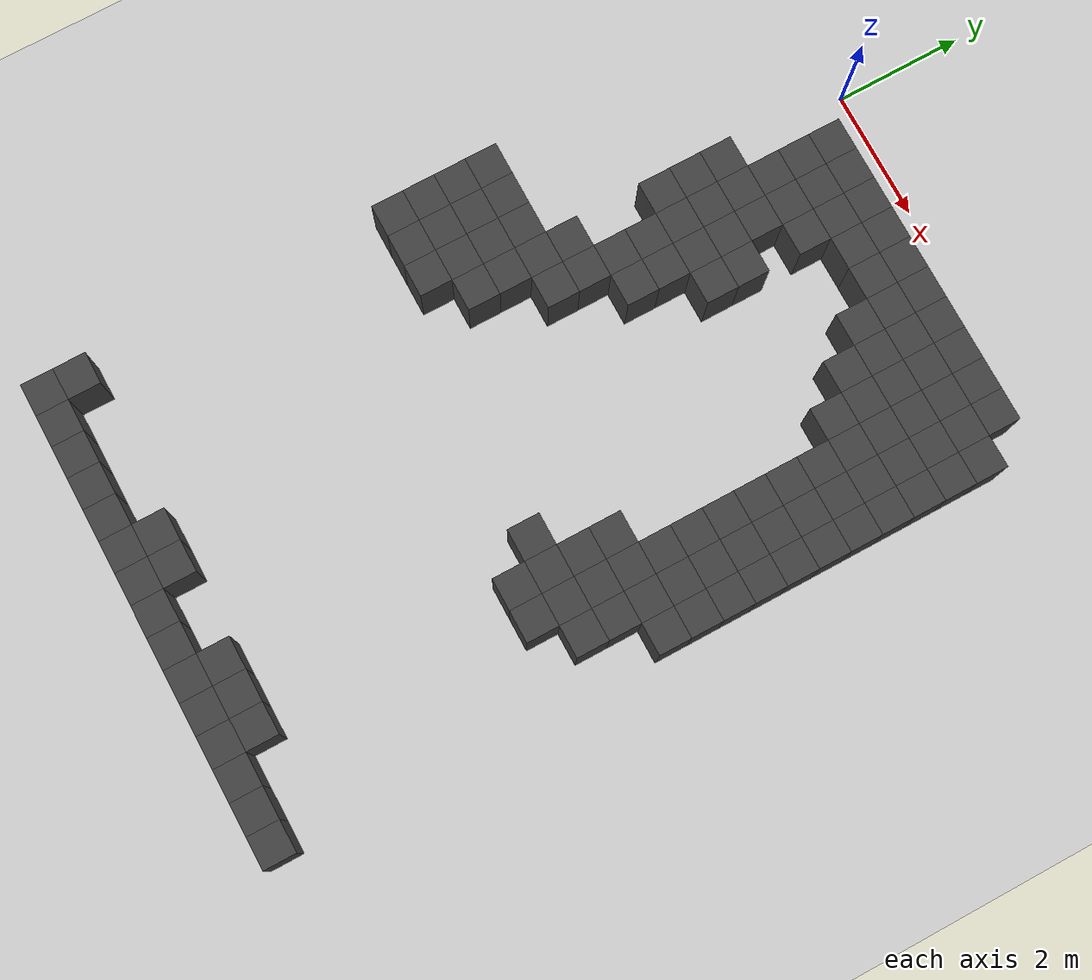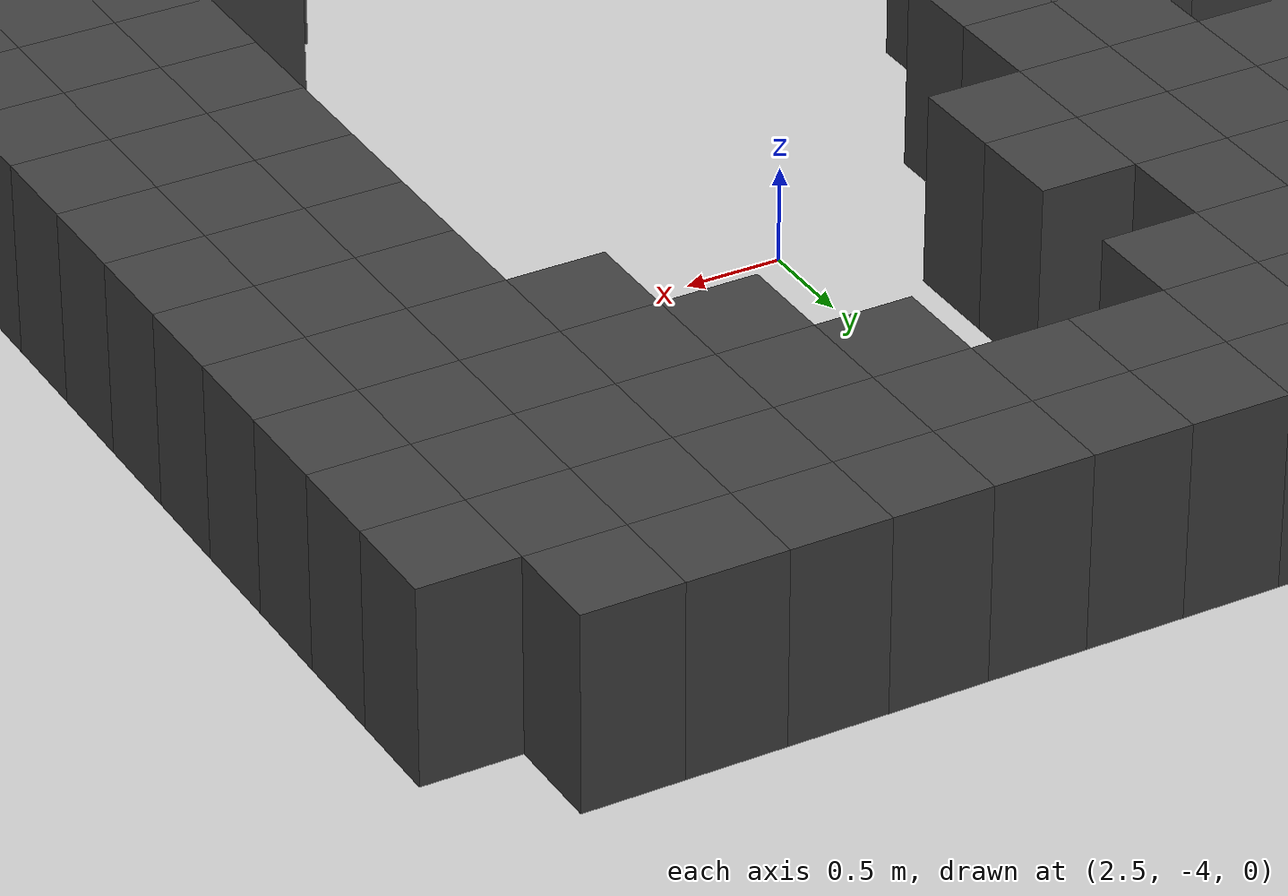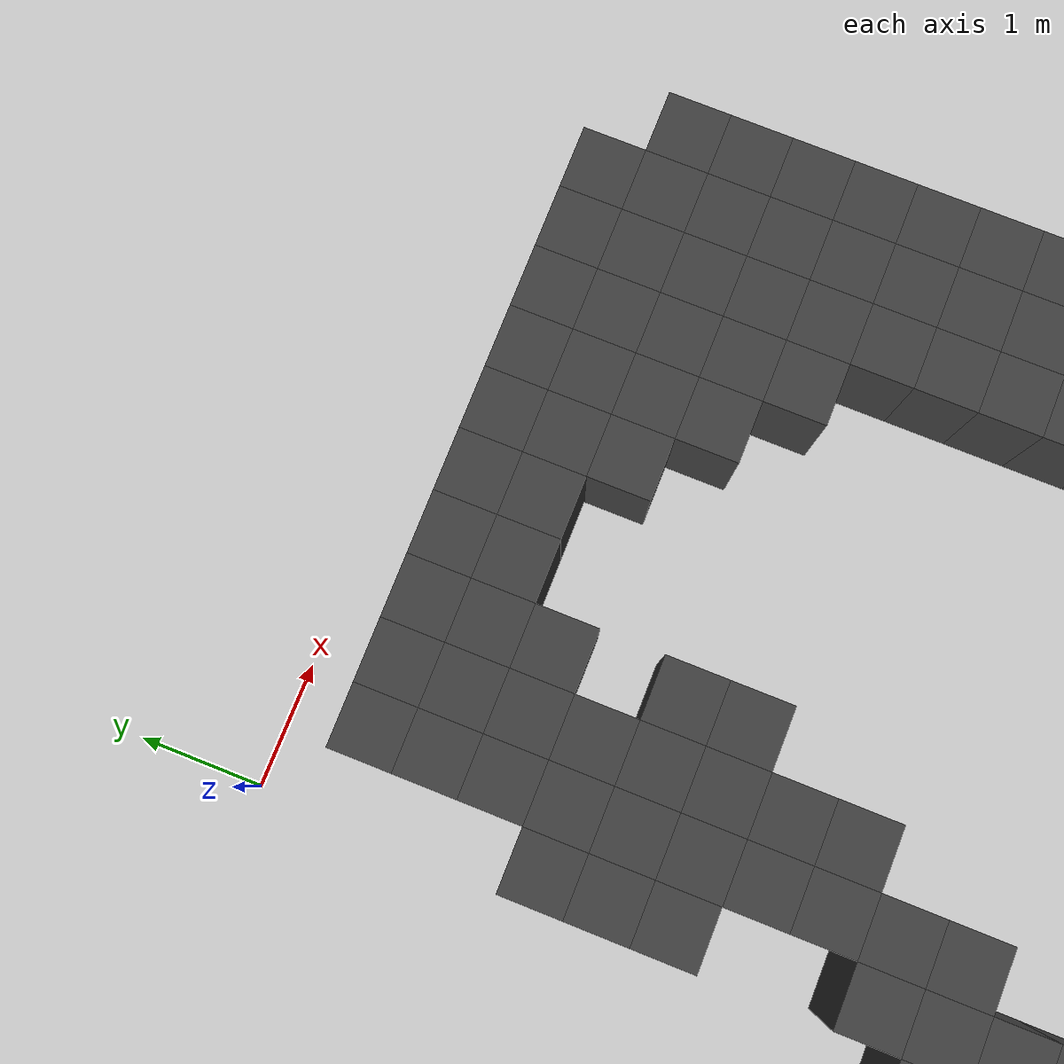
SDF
<sdf version="1.7">
 <world name="map_7972">
  <model name="ground_plane">
   <static>true</static>
   <link name="link">
    <collision name="collision">
     <geometry><plane><normal>0 0 1</normal><size>200 200</size></plane></geometry>
    </collision>
    <visual name="visual">
     <geometry><plane><normal>0 0 1</normal><size>200 200</size></plane></geometry>
     <material><ambient>0.8 0.8 0.8 1</ambient><diffuse>0.8 0.8 0.8 1</diffuse></material>
    </visual>
   </link>
  </model>
  <model name="maze_environment">
   <static>true</static>
   <link name="wall_431">
    <pose>0.750 -0.750 0.500 0 0 0</pose>
    <collision name="col"><geometry><box><size>0.5 0.5 1.0</size></box></geometry></collision>
    <visual name="vis">
     <geometry><box><size>0.5 0.5 1.0</size></box></geometry>
     <material><ambient>0.15 0.15 0.15 1</ambient><diffuse>0.25 0.25 0.25 1</diffuse></material>
    </visual>
   </link>
   <link name="wall_432">
    <pose>1.250 -0.750 0.500 0 0 0</pose>
    <collision name="col"><geometry><box><size>0.5 0.5 1.0</size></box></geometry></collision>
    <visual name="vis">
     <geometry><box><size>0.5 0.5 1.0</size></box></geometry>
     <material><ambient>0.15 0.15 0.15 1</ambient><diffuse>0.25 0.25 0.25 1</diffuse></material>
    </visual>
   </link>
   <link name="wall_433">
    <pose>1.750 -0.750 0.500 0 0 0</pose>
    <collision name="col"><geometry><box><size>0.5 0.5 1.0</size></box></geometry></collision>
    <visual name="vis">
     <geometry><box><size>0.5 0.5 1.0</size></box></geometry>
     <material><ambient>0.15 0.15 0.15 1</ambient><diffuse>0.25 0.25 0.25 1</diffuse></material>
    </visual>
   </link>
   <link name="wall_434">
    <pose>2.250 -0.750 0.500 0 0 0</pose>
    <collision name="col"><geometry><box><size>0.5 0.5 1.0</size></box></geometry></collision>
    <visual name="vis">
     <geometry><box><size>0.5 0.5 1.0</size></box></geometry>
     <material><ambient>0.15 0.15 0.15 1</ambient><diffuse>0.25 0.25 0.25 1</diffuse></material>
    </visual>
   </link>
   <link name="wall_435">
    <pose>2.750 -0.750 0.500 0 0 0</pose>
    <collision name="col"><geometry><box><size>0.5 0.5 1.0</size></box></geometry></collision>
    <visual name="vis">
     <geometry><box><size>0.5 0.5 1.0</size></box></geometry>
     <material><ambient>0.15 0.15 0.15 1</ambient><diffuse>0.25 0.25 0.25 1</diffuse></material>
    </visual>
   </link>
   <link name="wall_436">
    <pose>3.250 -0.750 0.500 0 0 0</pose>
    <collision name="col"><geometry><box><size>0.5 0.5 1.0</size></box></geometry></collision>
    <visual name="vis">
     <geometry><box><size>0.5 0.5 1.0</size></box></geometry>
     <material><ambient>0.15 0.15 0.15 1</ambient><diffuse>0.25 0.25 0.25 1</diffuse></material>
    </visual>
   </link>
   <link name="wall_437">
    <pose>3.750 -0.750 0.500 0 0 0</pose>
    <collision name="col"><geometry><box><size>0.5 0.5 1.0</size></box></geometry></collision>
    <visual name="vis">
     <geometry><box><size>0.5 0.5 1.0</size></box></geometry>
     <material><ambient>0.15 0.15 0.15 1</ambient><diffuse>0.25 0.25 0.25 1</diffuse></material>
    </visual>
   </link>
   <link name="wall_438">
    <pose>4.250 -0.750 0.500 0 0 0</pose>
    <collision name="col"><geometry><box><size>0.5 0.5 1.0</size></box></geometry></collision>
    <visual name="vis">
     <geometry><box><size>0.5 0.5 1.0</size></box></geometry>
     <material><ambient>0.15 0.15 0.15 1</ambient><diffuse>0.25 0.25 0.25 1</diffuse></material>
    </visual>
   </link>
   <link name="wall_439">
    <pose>4.750 -0.750 0.500 0 0 0</pose>
    <collision name="col"><geometry><box><size>0.5 0.5 1.0</size></box></geometry></collision>
    <visual name="vis">
     <geometry><box><size>0.5 0.5 1.0</size></box></geometry>
     <material><ambient>0.15 0.15 0.15 1</ambient><diffuse>0.25 0.25 0.25 1</diffuse></material>
    </visual>
   </link>
   <link name="wall_440">
    <pose>5.250 -0.750 0.500 0 0 0</pose>
    <collision name="col"><geometry><box><size>0.5 0.5 1.0</size></box></geometry></collision>
    <visual name="vis">
     <geometry><box><size>0.5 0.5 1.0</size></box></geometry>
     <material><ambient>0.15 0.15 0.15 1</ambient><diffuse>0.25 0.25 0.25 1</diffuse></material>
    </visual>
   </link>
   <link name="wall_461">
    <pose>0.750 -1.250 0.500 0 0 0</pose>
    <collision name="col"><geometry><box><size>0.5 0.5 1.0</size></box></geometry></collision>
    <visual name="vis">
     <geometry><box><size>0.5 0.5 1.0</size></box></geometry>
     <material><ambient>0.15 0.15 0.15 1</ambient><diffuse>0.25 0.25 0.25 1</diffuse></material>
    </visual>
   </link>
   <link name="wall_462">
    <pose>1.250 -1.250 0.500 0 0 0</pose>
    <collision name="col"><geometry><box><size>0.5 0.5 1.0</size></box></geometry></collision>
    <visual name="vis">
     <geometry><box><size>0.5 0.5 1.0</size></box></geometry>
     <material><ambient>0.15 0.15 0.15 1</ambient><diffuse>0.25 0.25 0.25 1</diffuse></material>
    </visual>
   </link>
   <link name="wall_463">
    <pose>1.750 -1.250 0.500 0 0 0</pose>
    <collision name="col"><geometry><box><size>0.5 0.5 1.0</size></box></geometry></collision>
    <visual name="vis">
     <geometry><box><size>0.5 0.5 1.0</size></box></geometry>
     <material><ambient>0.15 0.15 0.15 1</ambient><diffuse>0.25 0.25 0.25 1</diffuse></material>
    </visual>
   </link>
   <link name="wall_464">
    <pose>2.250 -1.250 0.500 0 0 0</pose>
    <collision name="col"><geometry><box><size>0.5 0.5 1.0</size></box></geometry></collision>
    <visual name="vis">
     <geometry><box><size>0.5 0.5 1.0</size></box></geometry>
     <material><ambient>0.15 0.15 0.15 1</ambient><diffuse>0.25 0.25 0.25 1</diffuse></material>
    </visual>
   </link>
   <link name="wall_465">
    <pose>2.750 -1.250 0.500 0 0 0</pose>
    <collision name="col"><geometry><box><size>0.5 0.5 1.0</size></box></geometry></collision>
    <visual name="vis">
     <geometry><box><size>0.5 0.5 1.0</size></box></geometry>
     <material><ambient>0.15 0.15 0.15 1</ambient><diffuse>0.25 0.25 0.25 1</diffuse></material>
    </visual>
   </link>
   <link name="wall_466">
    <pose>3.250 -1.250 0.500 0 0 0</pose>
    <collision name="col"><geometry><box><size>0.5 0.5 1.0</size></box></geometry></collision>
    <visual name="vis">
     <geometry><box><size>0.5 0.5 1.0</size></box></geometry>
     <material><ambient>0.15 0.15 0.15 1</ambient><diffuse>0.25 0.25 0.25 1</diffuse></material>
    </visual>
   </link>
   <link name="wall_467">
    <pose>3.750 -1.250 0.500 0 0 0</pose>
    <collision name="col"><geometry><box><size>0.5 0.5 1.0</size></box></geometry></collision>
    <visual name="vis">
     <geometry><box><size>0.5 0.5 1.0</size></box></geometry>
     <material><ambient>0.15 0.15 0.15 1</ambient><diffuse>0.25 0.25 0.25 1</diffuse></material>
    </visual>
   </link>
   <link name="wall_468">
    <pose>4.250 -1.250 0.500 0 0 0</pose>
    <collision name="col"><geometry><box><size>0.5 0.5 1.0</size></box></geometry></collision>
    <visual name="vis">
     <geometry><box><size>0.5 0.5 1.0</size></box></geometry>
     <material><ambient>0.15 0.15 0.15 1</ambient><diffuse>0.25 0.25 0.25 1</diffuse></material>
    </visual>
   </link>
   <link name="wall_469">
    <pose>4.750 -1.250 0.500 0 0 0</pose>
    <collision name="col"><geometry><box><size>0.5 0.5 1.0</size></box></geometry></collision>
    <visual name="vis">
     <geometry><box><size>0.5 0.5 1.0</size></box></geometry>
     <material><ambient>0.15 0.15 0.15 1</ambient><diffuse>0.25 0.25 0.25 1</diffuse></material>
    </visual>
   </link>
   <link name="wall_470">
    <pose>5.250 -1.250 0.500 0 0 0</pose>
    <collision name="col"><geometry><box><size>0.5 0.5 1.0</size></box></geometry></collision>
    <visual name="vis">
     <geometry><box><size>0.5 0.5 1.0</size></box></geometry>
     <material><ambient>0.15 0.15 0.15 1</ambient><diffuse>0.25 0.25 0.25 1</diffuse></material>
    </visual>
   </link>
   <link name="wall_471">
    <pose>5.750 -1.250 0.500 0 0 0</pose>
    <collision name="col"><geometry><box><size>0.5 0.5 1.0</size></box></geometry></collision>
    <visual name="vis">
     <geometry><box><size>0.5 0.5 1.0</size></box></geometry>
     <material><ambient>0.15 0.15 0.15 1</ambient><diffuse>0.25 0.25 0.25 1</diffuse></material>
    </visual>
   </link>
   <link name="wall_492">
    <pose>0.750 -1.750 0.500 0 0 0</pose>
    <collision name="col"><geometry><box><size>0.5 0.5 1.0</size></box></geometry></collision>
    <visual name="vis">
     <geometry><box><size>0.5 0.5 1.0</size></box></geometry>
     <material><ambient>0.15 0.15 0.15 1</ambient><diffuse>0.25 0.25 0.25 1</diffuse></material>
    </visual>
   </link>
   <link name="wall_493">
    <pose>1.250 -1.750 0.500 0 0 0</pose>
    <collision name="col"><geometry><box><size>0.5 0.5 1.0</size></box></geometry></collision>
    <visual name="vis">
     <geometry><box><size>0.5 0.5 1.0</size></box></geometry>
     <material><ambient>0.15 0.15 0.15 1</ambient><diffuse>0.25 0.25 0.25 1</diffuse></material>
    </visual>
   </link>
   <link name="wall_494">
    <pose>1.750 -1.750 0.500 0 0 0</pose>
    <collision name="col"><geometry><box><size>0.5 0.5 1.0</size></box></geometry></collision>
    <visual name="vis">
     <geometry><box><size>0.5 0.5 1.0</size></box></geometry>
     <material><ambient>0.15 0.15 0.15 1</ambient><diffuse>0.25 0.25 0.25 1</diffuse></material>
    </visual>
   </link>
   <link name="wall_495">
    <pose>3.250 -1.750 0.500 0 0 0</pose>
    <collision name="col"><geometry><box><size>0.5 0.5 1.0</size></box></geometry></collision>
    <visual name="vis">
     <geometry><box><size>0.5 0.5 1.0</size></box></geometry>
     <material><ambient>0.15 0.15 0.15 1</ambient><diffuse>0.25 0.25 0.25 1</diffuse></material>
    </visual>
   </link>
   <link name="wall_496">
    <pose>3.750 -1.750 0.500 0 0 0</pose>
    <collision name="col"><geometry><box><size>0.5 0.5 1.0</size></box></geometry></collision>
    <visual name="vis">
     <geometry><box><size>0.5 0.5 1.0</size></box></geometry>
     <material><ambient>0.15 0.15 0.15 1</ambient><diffuse>0.25 0.25 0.25 1</diffuse></material>
    </visual>
   </link>
   <link name="wall_497">
    <pose>4.250 -1.750 0.500 0 0 0</pose>
    <collision name="col"><geometry><box><size>0.5 0.5 1.0</size></box></geometry></collision>
    <visual name="vis">
     <geometry><box><size>0.5 0.5 1.0</size></box></geometry>
     <material><ambient>0.15 0.15 0.15 1</ambient><diffuse>0.25 0.25 0.25 1</diffuse></material>
    </visual>
   </link>
   <link name="wall_498">
    <pose>4.750 -1.750 0.500 0 0 0</pose>
    <collision name="col"><geometry><box><size>0.5 0.5 1.0</size></box></geometry></collision>
    <visual name="vis">
     <geometry><box><size>0.5 0.5 1.0</size></box></geometry>
     <material><ambient>0.15 0.15 0.15 1</ambient><diffuse>0.25 0.25 0.25 1</diffuse></material>
    </visual>
   </link>
   <link name="wall_499">
    <pose>5.250 -1.750 0.500 0 0 0</pose>
    <collision name="col"><geometry><box><size>0.5 0.5 1.0</size></box></geometry></collision>
    <visual name="vis">
     <geometry><box><size>0.5 0.5 1.0</size></box></geometry>
     <material><ambient>0.15 0.15 0.15 1</ambient><diffuse>0.25 0.25 0.25 1</diffuse></material>
    </visual>
   </link>
   <link name="wall_500">
    <pose>5.750 -1.750 0.500 0 0 0</pose>
    <collision name="col"><geometry><box><size>0.5 0.5 1.0</size></box></geometry></collision>
    <visual name="vis">
     <geometry><box><size>0.5 0.5 1.0</size></box></geometry>
     <material><ambient>0.15 0.15 0.15 1</ambient><diffuse>0.25 0.25 0.25 1</diffuse></material>
    </visual>
   </link>
   <link name="wall_522">
    <pose>0.250 -2.250 0.500 0 0 0</pose>
    <collision name="col"><geometry><box><size>0.5 0.5 1.0</size></box></geometry></collision>
    <visual name="vis">
     <geometry><box><size>0.5 0.5 1.0</size></box></geometry>
     <material><ambient>0.15 0.15 0.15 1</ambient><diffuse>0.25 0.25 0.25 1</diffuse></material>
    </visual>
   </link>
   <link name="wall_523">
    <pose>0.750 -2.250 0.500 0 0 0</pose>
    <collision name="col"><geometry><box><size>0.5 0.5 1.0</size></box></geometry></collision>
    <visual name="vis">
     <geometry><box><size>0.5 0.5 1.0</size></box></geometry>
     <material><ambient>0.15 0.15 0.15 1</ambient><diffuse>0.25 0.25 0.25 1</diffuse></material>
    </visual>
   </link>
   <link name="wall_524">
    <pose>1.250 -2.250 0.500 0 0 0</pose>
    <collision name="col"><geometry><box><size>0.5 0.5 1.0</size></box></geometry></collision>
    <visual name="vis">
     <geometry><box><size>0.5 0.5 1.0</size></box></geometry>
     <material><ambient>0.15 0.15 0.15 1</ambient><diffuse>0.25 0.25 0.25 1</diffuse></material>
    </visual>
   </link>
   <link name="wall_525">
    <pose>3.750 -2.250 0.500 0 0 0</pose>
    <collision name="col"><geometry><box><size>0.5 0.5 1.0</size></box></geometry></collision>
    <visual name="vis">
     <geometry><box><size>0.5 0.5 1.0</size></box></geometry>
     <material><ambient>0.15 0.15 0.15 1</ambient><diffuse>0.25 0.25 0.25 1</diffuse></material>
    </visual>
   </link>
   <link name="wall_526">
    <pose>4.250 -2.250 0.500 0 0 0</pose>
    <collision name="col"><geometry><box><size>0.5 0.5 1.0</size></box></geometry></collision>
    <visual name="vis">
     <geometry><box><size>0.5 0.5 1.0</size></box></geometry>
     <material><ambient>0.15 0.15 0.15 1</ambient><diffuse>0.25 0.25 0.25 1</diffuse></material>
    </visual>
   </link>
   <link name="wall_527">
    <pose>4.750 -2.250 0.500 0 0 0</pose>
    <collision name="col"><geometry><box><size>0.5 0.5 1.0</size></box></geometry></collision>
    <visual name="vis">
     <geometry><box><size>0.5 0.5 1.0</size></box></geometry>
     <material><ambient>0.15 0.15 0.15 1</ambient><diffuse>0.25 0.25 0.25 1</diffuse></material>
    </visual>
   </link>
   <link name="wall_528">
    <pose>5.250 -2.250 0.500 0 0 0</pose>
    <collision name="col"><geometry><box><size>0.5 0.5 1.0</size></box></geometry></collision>
    <visual name="vis">
     <geometry><box><size>0.5 0.5 1.0</size></box></geometry>
     <material><ambient>0.15 0.15 0.15 1</ambient><diffuse>0.25 0.25 0.25 1</diffuse></material>
    </visual>
   </link>
   <link name="wall_529">
    <pose>5.750 -2.250 0.500 0 0 0</pose>
    <collision name="col"><geometry><box><size>0.5 0.5 1.0</size></box></geometry></collision>
    <visual name="vis">
     <geometry><box><size>0.5 0.5 1.0</size></box></geometry>
     <material><ambient>0.15 0.15 0.15 1</ambient><diffuse>0.25 0.25 0.25 1</diffuse></material>
    </visual>
   </link>
   <link name="wall_552">
    <pose>0.250 -2.750 0.500 0 0 0</pose>
    <collision name="col"><geometry><box><size>0.5 0.5 1.0</size></box></geometry></collision>
    <visual name="vis">
     <geometry><box><size>0.5 0.5 1.0</size></box></geometry>
     <material><ambient>0.15 0.15 0.15 1</ambient><diffuse>0.25 0.25 0.25 1</diffuse></material>
    </visual>
   </link>
   <link name="wall_553">
    <pose>0.750 -2.750 0.500 0 0 0</pose>
    <collision name="col"><geometry><box><size>0.5 0.5 1.0</size></box></geometry></collision>
    <visual name="vis">
     <geometry><box><size>0.5 0.5 1.0</size></box></geometry>
     <material><ambient>0.15 0.15 0.15 1</ambient><diffuse>0.25 0.25 0.25 1</diffuse></material>
    </visual>
   </link>
   <link name="wall_554">
    <pose>1.250 -2.750 0.500 0 0 0</pose>
    <collision name="col"><geometry><box><size>0.5 0.5 1.0</size></box></geometry></collision>
    <visual name="vis">
     <geometry><box><size>0.5 0.5 1.0</size></box></geometry>
     <material><ambient>0.15 0.15 0.15 1</ambient><diffuse>0.25 0.25 0.25 1</diffuse></material>
    </visual>
   </link>
   <link name="wall_555">
    <pose>1.750 -2.750 0.500 0 0 0</pose>
    <collision name="col"><geometry><box><size>0.5 0.5 1.0</size></box></geometry></collision>
    <visual name="vis">
     <geometry><box><size>0.5 0.5 1.0</size></box></geometry>
     <material><ambient>0.15 0.15 0.15 1</ambient><diffuse>0.25 0.25 0.25 1</diffuse></material>
    </visual>
   </link>
   <link name="wall_556">
    <pose>4.250 -2.750 0.500 0 0 0</pose>
    <collision name="col"><geometry><box><size>0.5 0.5 1.0</size></box></geometry></collision>
    <visual name="vis">
     <geometry><box><size>0.5 0.5 1.0</size></box></geometry>
     <material><ambient>0.15 0.15 0.15 1</ambient><diffuse>0.25 0.25 0.25 1</diffuse></material>
    </visual>
   </link>
   <link name="wall_557">
    <pose>4.750 -2.750 0.500 0 0 0</pose>
    <collision name="col"><geometry><box><size>0.5 0.5 1.0</size></box></geometry></collision>
    <visual name="vis">
     <geometry><box><size>0.5 0.5 1.0</size></box></geometry>
     <material><ambient>0.15 0.15 0.15 1</ambient><diffuse>0.25 0.25 0.25 1</diffuse></material>
    </visual>
   </link>
   <link name="wall_558">
    <pose>5.250 -2.750 0.500 0 0 0</pose>
    <collision name="col"><geometry><box><size>0.5 0.5 1.0</size></box></geometry></collision>
    <visual name="vis">
     <geometry><box><size>0.5 0.5 1.0</size></box></geometry>
     <material><ambient>0.15 0.15 0.15 1</ambient><diffuse>0.25 0.25 0.25 1</diffuse></material>
    </visual>
   </link>
   <link name="wall_559">
    <pose>5.750 -2.750 0.500 0 0 0</pose>
    <collision name="col"><geometry><box><size>0.5 0.5 1.0</size></box></geometry></collision>
    <visual name="vis">
     <geometry><box><size>0.5 0.5 1.0</size></box></geometry>
     <material><ambient>0.15 0.15 0.15 1</ambient><diffuse>0.25 0.25 0.25 1</diffuse></material>
    </visual>
   </link>
   <link name="wall_578">
    <pose>0.250 -3.250 0.500 0 0 0</pose>
    <collision name="col"><geometry><box><size>0.5 0.5 1.0</size></box></geometry></collision>
    <visual name="vis">
     <geometry><box><size>0.5 0.5 1.0</size></box></geometry>
     <material><ambient>0.15 0.15 0.15 1</ambient><diffuse>0.25 0.25 0.25 1</diffuse></material>
    </visual>
   </link>
   <link name="wall_579">
    <pose>0.750 -3.250 0.500 0 0 0</pose>
    <collision name="col"><geometry><box><size>0.5 0.5 1.0</size></box></geometry></collision>
    <visual name="vis">
     <geometry><box><size>0.5 0.5 1.0</size></box></geometry>
     <material><ambient>0.15 0.15 0.15 1</ambient><diffuse>0.25 0.25 0.25 1</diffuse></material>
    </visual>
   </link>
   <link name="wall_580">
    <pose>1.250 -3.250 0.500 0 0 0</pose>
    <collision name="col"><geometry><box><size>0.5 0.5 1.0</size></box></geometry></collision>
    <visual name="vis">
     <geometry><box><size>0.5 0.5 1.0</size></box></geometry>
     <material><ambient>0.15 0.15 0.15 1</ambient><diffuse>0.25 0.25 0.25 1</diffuse></material>
    </visual>
   </link>
   <link name="wall_581">
    <pose>1.750 -3.250 0.500 0 0 0</pose>
    <collision name="col"><geometry><box><size>0.5 0.5 1.0</size></box></geometry></collision>
    <visual name="vis">
     <geometry><box><size>0.5 0.5 1.0</size></box></geometry>
     <material><ambient>0.15 0.15 0.15 1</ambient><diffuse>0.25 0.25 0.25 1</diffuse></material>
    </visual>
   </link>
   <link name="wall_582">
    <pose>4.750 -3.250 0.500 0 0 0</pose>
    <collision name="col"><geometry><box><size>0.5 0.5 1.0</size></box></geometry></collision>
    <visual name="vis">
     <geometry><box><size>0.5 0.5 1.0</size></box></geometry>
     <material><ambient>0.15 0.15 0.15 1</ambient><diffuse>0.25 0.25 0.25 1</diffuse></material>
    </visual>
   </link>
   <link name="wall_583">
    <pose>5.250 -3.250 0.500 0 0 0</pose>
    <collision name="col"><geometry><box><size>0.5 0.5 1.0</size></box></geometry></collision>
    <visual name="vis">
     <geometry><box><size>0.5 0.5 1.0</size></box></geometry>
     <material><ambient>0.15 0.15 0.15 1</ambient><diffuse>0.25 0.25 0.25 1</diffuse></material>
    </visual>
   </link>
   <link name="wall_584">
    <pose>5.750 -3.250 0.500 0 0 0</pose>
    <collision name="col"><geometry><box><size>0.5 0.5 1.0</size></box></geometry></collision>
    <visual name="vis">
     <geometry><box><size>0.5 0.5 1.0</size></box></geometry>
     <material><ambient>0.15 0.15 0.15 1</ambient><diffuse>0.25 0.25 0.25 1</diffuse></material>
    </visual>
   </link>
   <link name="wall_599">
    <pose>0.750 -3.750 0.500 0 0 0</pose>
    <collision name="col"><geometry><box><size>0.5 0.5 1.0</size></box></geometry></collision>
    <visual name="vis">
     <geometry><box><size>0.5 0.5 1.0</size></box></geometry>
     <material><ambient>0.15 0.15 0.15 1</ambient><diffuse>0.25 0.25 0.25 1</diffuse></material>
    </visual>
   </link>
   <link name="wall_600">
    <pose>1.250 -3.750 0.500 0 0 0</pose>
    <collision name="col"><geometry><box><size>0.5 0.5 1.0</size></box></geometry></collision>
    <visual name="vis">
     <geometry><box><size>0.5 0.5 1.0</size></box></geometry>
     <material><ambient>0.15 0.15 0.15 1</ambient><diffuse>0.25 0.25 0.25 1</diffuse></material>
    </visual>
   </link>
   <link name="wall_601">
    <pose>4.750 -3.750 0.500 0 0 0</pose>
    <collision name="col"><geometry><box><size>0.5 0.5 1.0</size></box></geometry></collision>
    <visual name="vis">
     <geometry><box><size>0.5 0.5 1.0</size></box></geometry>
     <material><ambient>0.15 0.15 0.15 1</ambient><diffuse>0.25 0.25 0.25 1</diffuse></material>
    </visual>
   </link>
   <link name="wall_602">
    <pose>5.250 -3.750 0.500 0 0 0</pose>
    <collision name="col"><geometry><box><size>0.5 0.5 1.0</size></box></geometry></collision>
    <visual name="vis">
     <geometry><box><size>0.5 0.5 1.0</size></box></geometry>
     <material><ambient>0.15 0.15 0.15 1</ambient><diffuse>0.25 0.25 0.25 1</diffuse></material>
    </visual>
   </link>
   <link name="wall_603">
    <pose>5.750 -3.750 0.500 0 0 0</pose>
    <collision name="col"><geometry><box><size>0.5 0.5 1.0</size></box></geometry></collision>
    <visual name="vis">
     <geometry><box><size>0.5 0.5 1.0</size></box></geometry>
     <material><ambient>0.15 0.15 0.15 1</ambient><diffuse>0.25 0.25 0.25 1</diffuse></material>
    </visual>
   </link>
   <link name="wall_615">
    <pose>0.750 -4.250 0.500 0 0 0</pose>
    <collision name="col"><geometry><box><size>0.5 0.5 1.0</size></box></geometry></collision>
    <visual name="vis">
     <geometry><box><size>0.5 0.5 1.0</size></box></geometry>
     <material><ambient>0.15 0.15 0.15 1</ambient><diffuse>0.25 0.25 0.25 1</diffuse></material>
    </visual>
   </link>
   <link name="wall_616">
    <pose>1.250 -4.250 0.500 0 0 0</pose>
    <collision name="col"><geometry><box><size>0.5 0.5 1.0</size></box></geometry></collision>
    <visual name="vis">
     <geometry><box><size>0.5 0.5 1.0</size></box></geometry>
     <material><ambient>0.15 0.15 0.15 1</ambient><diffuse>0.25 0.25 0.25 1</diffuse></material>
    </visual>
   </link>
   <link name="wall_617">
    <pose>4.750 -4.250 0.500 0 0 0</pose>
    <collision name="col"><geometry><box><size>0.5 0.5 1.0</size></box></geometry></collision>
    <visual name="vis">
     <geometry><box><size>0.5 0.5 1.0</size></box></geometry>
     <material><ambient>0.15 0.15 0.15 1</ambient><diffuse>0.25 0.25 0.25 1</diffuse></material>
    </visual>
   </link>
   <link name="wall_618">
    <pose>5.250 -4.250 0.500 0 0 0</pose>
    <collision name="col"><geometry><box><size>0.5 0.5 1.0</size></box></geometry></collision>
    <visual name="vis">
     <geometry><box><size>0.5 0.5 1.0</size></box></geometry>
     <material><ambient>0.15 0.15 0.15 1</ambient><diffuse>0.25 0.25 0.25 1</diffuse></material>
    </visual>
   </link>
   <link name="wall_619">
    <pose>5.750 -4.250 0.500 0 0 0</pose>
    <collision name="col"><geometry><box><size>0.5 0.5 1.0</size></box></geometry></collision>
    <visual name="vis">
     <geometry><box><size>0.5 0.5 1.0</size></box></geometry>
     <material><ambient>0.15 0.15 0.15 1</ambient><diffuse>0.25 0.25 0.25 1</diffuse></material>
    </visual>
   </link>
   <link name="wall_627">
    <pose>0.250 -4.750 0.500 0 0 0</pose>
    <collision name="col"><geometry><box><size>0.5 0.5 1.0</size></box></geometry></collision>
    <visual name="vis">
     <geometry><box><size>0.5 0.5 1.0</size></box></geometry>
     <material><ambient>0.15 0.15 0.15 1</ambient><diffuse>0.25 0.25 0.25 1</diffuse></material>
    </visual>
   </link>
   <link name="wall_628">
    <pose>0.750 -4.750 0.500 0 0 0</pose>
    <collision name="col"><geometry><box><size>0.5 0.5 1.0</size></box></geometry></collision>
    <visual name="vis">
     <geometry><box><size>0.5 0.5 1.0</size></box></geometry>
     <material><ambient>0.15 0.15 0.15 1</ambient><diffuse>0.25 0.25 0.25 1</diffuse></material>
    </visual>
   </link>
   <link name="wall_629">
    <pose>4.750 -4.750 0.500 0 0 0</pose>
    <collision name="col"><geometry><box><size>0.5 0.5 1.0</size></box></geometry></collision>
    <visual name="vis">
     <geometry><box><size>0.5 0.5 1.0</size></box></geometry>
     <material><ambient>0.15 0.15 0.15 1</ambient><diffuse>0.25 0.25 0.25 1</diffuse></material>
    </visual>
   </link>
   <link name="wall_630">
    <pose>5.250 -4.750 0.500 0 0 0</pose>
    <collision name="col"><geometry><box><size>0.5 0.5 1.0</size></box></geometry></collision>
    <visual name="vis">
     <geometry><box><size>0.5 0.5 1.0</size></box></geometry>
     <material><ambient>0.15 0.15 0.15 1</ambient><diffuse>0.25 0.25 0.25 1</diffuse></material>
    </visual>
   </link>
   <link name="wall_631">
    <pose>5.750 -4.750 0.500 0 0 0</pose>
    <collision name="col"><geometry><box><size>0.5 0.5 1.0</size></box></geometry></collision>
    <visual name="vis">
     <geometry><box><size>0.5 0.5 1.0</size></box></geometry>
     <material><ambient>0.15 0.15 0.15 1</ambient><diffuse>0.25 0.25 0.25 1</diffuse></material>
    </visual>
   </link>
   <link name="wall_643">
    <pose>-1.250 -5.250 0.500 0 0 0</pose>
    <collision name="col"><geometry><box><size>0.5 0.5 1.0</size></box></geometry></collision>
    <visual name="vis">
     <geometry><box><size>0.5 0.5 1.0</size></box></geometry>
     <material><ambient>0.15 0.15 0.15 1</ambient><diffuse>0.25 0.25 0.25 1</diffuse></material>
    </visual>
   </link>
   <link name="wall_644">
    <pose>-0.750 -5.250 0.500 0 0 0</pose>
    <collision name="col"><geometry><box><size>0.5 0.5 1.0</size></box></geometry></collision>
    <visual name="vis">
     <geometry><box><size>0.5 0.5 1.0</size></box></geometry>
     <material><ambient>0.15 0.15 0.15 1</ambient><diffuse>0.25 0.25 0.25 1</diffuse></material>
    </visual>
   </link>
   <link name="wall_645">
    <pose>-0.250 -5.250 0.500 0 0 0</pose>
    <collision name="col"><geometry><box><size>0.5 0.5 1.0</size></box></geometry></collision>
    <visual name="vis">
     <geometry><box><size>0.5 0.5 1.0</size></box></geometry>
     <material><ambient>0.15 0.15 0.15 1</ambient><diffuse>0.25 0.25 0.25 1</diffuse></material>
    </visual>
   </link>
   <link name="wall_646">
    <pose>0.250 -5.250 0.500 0 0 0</pose>
    <collision name="col"><geometry><box><size>0.5 0.5 1.0</size></box></geometry></collision>
    <visual name="vis">
     <geometry><box><size>0.5 0.5 1.0</size></box></geometry>
     <material><ambient>0.15 0.15 0.15 1</ambient><diffuse>0.25 0.25 0.25 1</diffuse></material>
    </visual>
   </link>
   <link name="wall_647">
    <pose>0.750 -5.250 0.500 0 0 0</pose>
    <collision name="col"><geometry><box><size>0.5 0.5 1.0</size></box></geometry></collision>
    <visual name="vis">
     <geometry><box><size>0.5 0.5 1.0</size></box></geometry>
     <material><ambient>0.15 0.15 0.15 1</ambient><diffuse>0.25 0.25 0.25 1</diffuse></material>
    </visual>
   </link>
   <link name="wall_648">
    <pose>4.750 -5.250 0.500 0 0 0</pose>
    <collision name="col"><geometry><box><size>0.5 0.5 1.0</size></box></geometry></collision>
    <visual name="vis">
     <geometry><box><size>0.5 0.5 1.0</size></box></geometry>
     <material><ambient>0.15 0.15 0.15 1</ambient><diffuse>0.25 0.25 0.25 1</diffuse></material>
    </visual>
   </link>
   <link name="wall_649">
    <pose>5.250 -5.250 0.500 0 0 0</pose>
    <collision name="col"><geometry><box><size>0.5 0.5 1.0</size></box></geometry></collision>
    <visual name="vis">
     <geometry><box><size>0.5 0.5 1.0</size></box></geometry>
     <material><ambient>0.15 0.15 0.15 1</ambient><diffuse>0.25 0.25 0.25 1</diffuse></material>
    </visual>
   </link>
   <link name="wall_650">
    <pose>5.750 -5.250 0.500 0 0 0</pose>
    <collision name="col"><geometry><box><size>0.5 0.5 1.0</size></box></geometry></collision>
    <visual name="vis">
     <geometry><box><size>0.5 0.5 1.0</size></box></geometry>
     <material><ambient>0.15 0.15 0.15 1</ambient><diffuse>0.25 0.25 0.25 1</diffuse></material>
    </visual>
   </link>
   <link name="wall_663">
    <pose>-1.250 -5.750 0.500 0 0 0</pose>
    <collision name="col"><geometry><box><size>0.5 0.5 1.0</size></box></geometry></collision>
    <visual name="vis">
     <geometry><box><size>0.5 0.5 1.0</size></box></geometry>
     <material><ambient>0.15 0.15 0.15 1</ambient><diffuse>0.25 0.25 0.25 1</diffuse></material>
    </visual>
   </link>
   <link name="wall_664">
    <pose>-0.750 -5.750 0.500 0 0 0</pose>
    <collision name="col"><geometry><box><size>0.5 0.5 1.0</size></box></geometry></collision>
    <visual name="vis">
     <geometry><box><size>0.5 0.5 1.0</size></box></geometry>
     <material><ambient>0.15 0.15 0.15 1</ambient><diffuse>0.25 0.25 0.25 1</diffuse></material>
    </visual>
   </link>
   <link name="wall_665">
    <pose>-0.250 -5.750 0.500 0 0 0</pose>
    <collision name="col"><geometry><box><size>0.5 0.5 1.0</size></box></geometry></collision>
    <visual name="vis">
     <geometry><box><size>0.5 0.5 1.0</size></box></geometry>
     <material><ambient>0.15 0.15 0.15 1</ambient><diffuse>0.25 0.25 0.25 1</diffuse></material>
    </visual>
   </link>
   <link name="wall_666">
    <pose>0.250 -5.750 0.500 0 0 0</pose>
    <collision name="col"><geometry><box><size>0.5 0.5 1.0</size></box></geometry></collision>
    <visual name="vis">
     <geometry><box><size>0.5 0.5 1.0</size></box></geometry>
     <material><ambient>0.15 0.15 0.15 1</ambient><diffuse>0.25 0.25 0.25 1</diffuse></material>
    </visual>
   </link>
   <link name="wall_667">
    <pose>4.750 -5.750 0.500 0 0 0</pose>
    <collision name="col"><geometry><box><size>0.5 0.5 1.0</size></box></geometry></collision>
    <visual name="vis">
     <geometry><box><size>0.5 0.5 1.0</size></box></geometry>
     <material><ambient>0.15 0.15 0.15 1</ambient><diffuse>0.25 0.25 0.25 1</diffuse></material>
    </visual>
   </link>
   <link name="wall_668">
    <pose>5.250 -5.750 0.500 0 0 0</pose>
    <collision name="col"><geometry><box><size>0.5 0.5 1.0</size></box></geometry></collision>
    <visual name="vis">
     <geometry><box><size>0.5 0.5 1.0</size></box></geometry>
     <material><ambient>0.15 0.15 0.15 1</ambient><diffuse>0.25 0.25 0.25 1</diffuse></material>
    </visual>
   </link>
   <link name="wall_669">
    <pose>5.750 -5.750 0.500 0 0 0</pose>
    <collision name="col"><geometry><box><size>0.5 0.5 1.0</size></box></geometry></collision>
    <visual name="vis">
     <geometry><box><size>0.5 0.5 1.0</size></box></geometry>
     <material><ambient>0.15 0.15 0.15 1</ambient><diffuse>0.25 0.25 0.25 1</diffuse></material>
    </visual>
   </link>
   <link name="wall_682">
    <pose>-1.250 -6.250 0.500 0 0 0</pose>
    <collision name="col"><geometry><box><size>0.5 0.5 1.0</size></box></geometry></collision>
    <visual name="vis">
     <geometry><box><size>0.5 0.5 1.0</size></box></geometry>
     <material><ambient>0.15 0.15 0.15 1</ambient><diffuse>0.25 0.25 0.25 1</diffuse></material>
    </visual>
   </link>
   <link name="wall_683">
    <pose>-0.750 -6.250 0.500 0 0 0</pose>
    <collision name="col"><geometry><box><size>0.5 0.5 1.0</size></box></geometry></collision>
    <visual name="vis">
     <geometry><box><size>0.5 0.5 1.0</size></box></geometry>
     <material><ambient>0.15 0.15 0.15 1</ambient><diffuse>0.25 0.25 0.25 1</diffuse></material>
    </visual>
   </link>
   <link name="wall_684">
    <pose>-0.250 -6.250 0.500 0 0 0</pose>
    <collision name="col"><geometry><box><size>0.5 0.5 1.0</size></box></geometry></collision>
    <visual name="vis">
     <geometry><box><size>0.5 0.5 1.0</size></box></geometry>
     <material><ambient>0.15 0.15 0.15 1</ambient><diffuse>0.25 0.25 0.25 1</diffuse></material>
    </visual>
   </link>
   <link name="wall_685">
    <pose>0.250 -6.250 0.500 0 0 0</pose>
    <collision name="col"><geometry><box><size>0.5 0.5 1.0</size></box></geometry></collision>
    <visual name="vis">
     <geometry><box><size>0.5 0.5 1.0</size></box></geometry>
     <material><ambient>0.15 0.15 0.15 1</ambient><diffuse>0.25 0.25 0.25 1</diffuse></material>
    </visual>
   </link>
   <link name="wall_686">
    <pose>4.250 -6.250 0.500 0 0 0</pose>
    <collision name="col"><geometry><box><size>0.5 0.5 1.0</size></box></geometry></collision>
    <visual name="vis">
     <geometry><box><size>0.5 0.5 1.0</size></box></geometry>
     <material><ambient>0.15 0.15 0.15 1</ambient><diffuse>0.25 0.25 0.25 1</diffuse></material>
    </visual>
   </link>
   <link name="wall_687">
    <pose>4.750 -6.250 0.500 0 0 0</pose>
    <collision name="col"><geometry><box><size>0.5 0.5 1.0</size></box></geometry></collision>
    <visual name="vis">
     <geometry><box><size>0.5 0.5 1.0</size></box></geometry>
     <material><ambient>0.15 0.15 0.15 1</ambient><diffuse>0.25 0.25 0.25 1</diffuse></material>
    </visual>
   </link>
   <link name="wall_688">
    <pose>5.250 -6.250 0.500 0 0 0</pose>
    <collision name="col"><geometry><box><size>0.5 0.5 1.0</size></box></geometry></collision>
    <visual name="vis">
     <geometry><box><size>0.5 0.5 1.0</size></box></geometry>
     <material><ambient>0.15 0.15 0.15 1</ambient><diffuse>0.25 0.25 0.25 1</diffuse></material>
    </visual>
   </link>
   <link name="wall_689">
    <pose>5.750 -6.250 0.500 0 0 0</pose>
    <collision name="col"><geometry><box><size>0.5 0.5 1.0</size></box></geometry></collision>
    <visual name="vis">
     <geometry><box><size>0.5 0.5 1.0</size></box></geometry>
     <material><ambient>0.15 0.15 0.15 1</ambient><diffuse>0.25 0.25 0.25 1</diffuse></material>
    </visual>
   </link>
   <link name="wall_703">
    <pose>-1.250 -6.750 0.500 0 0 0</pose>
    <collision name="col"><geometry><box><size>0.5 0.5 1.0</size></box></geometry></collision>
    <visual name="vis">
     <geometry><box><size>0.5 0.5 1.0</size></box></geometry>
     <material><ambient>0.15 0.15 0.15 1</ambient><diffuse>0.25 0.25 0.25 1</diffuse></material>
    </visual>
   </link>
   <link name="wall_704">
    <pose>-0.750 -6.750 0.500 0 0 0</pose>
    <collision name="col"><geometry><box><size>0.5 0.5 1.0</size></box></geometry></collision>
    <visual name="vis">
     <geometry><box><size>0.5 0.5 1.0</size></box></geometry>
     <material><ambient>0.15 0.15 0.15 1</ambient><diffuse>0.25 0.25 0.25 1</diffuse></material>
    </visual>
   </link>
   <link name="wall_705">
    <pose>-0.250 -6.750 0.500 0 0 0</pose>
    <collision name="col"><geometry><box><size>0.5 0.5 1.0</size></box></geometry></collision>
    <visual name="vis">
     <geometry><box><size>0.5 0.5 1.0</size></box></geometry>
     <material><ambient>0.15 0.15 0.15 1</ambient><diffuse>0.25 0.25 0.25 1</diffuse></material>
    </visual>
   </link>
   <link name="wall_706">
    <pose>4.250 -6.750 0.500 0 0 0</pose>
    <collision name="col"><geometry><box><size>0.5 0.5 1.0</size></box></geometry></collision>
    <visual name="vis">
     <geometry><box><size>0.5 0.5 1.0</size></box></geometry>
     <material><ambient>0.15 0.15 0.15 1</ambient><diffuse>0.25 0.25 0.25 1</diffuse></material>
    </visual>
   </link>
   <link name="wall_707">
    <pose>4.750 -6.750 0.500 0 0 0</pose>
    <collision name="col"><geometry><box><size>0.5 0.5 1.0</size></box></geometry></collision>
    <visual name="vis">
     <geometry><box><size>0.5 0.5 1.0</size></box></geometry>
     <material><ambient>0.15 0.15 0.15 1</ambient><diffuse>0.25 0.25 0.25 1</diffuse></material>
    </visual>
   </link>
   <link name="wall_708">
    <pose>5.250 -6.750 0.500 0 0 0</pose>
    <collision name="col"><geometry><box><size>0.5 0.5 1.0</size></box></geometry></collision>
    <visual name="vis">
     <geometry><box><size>0.5 0.5 1.0</size></box></geometry>
     <material><ambient>0.15 0.15 0.15 1</ambient><diffuse>0.25 0.25 0.25 1</diffuse></material>
    </visual>
   </link>
   <link name="wall_721">
    <pose>3.750 -7.250 0.500 0 0 0</pose>
    <collision name="col"><geometry><box><size>0.5 0.5 1.0</size></box></geometry></collision>
    <visual name="vis">
     <geometry><box><size>0.5 0.5 1.0</size></box></geometry>
     <material><ambient>0.15 0.15 0.15 1</ambient><diffuse>0.25 0.25 0.25 1</diffuse></material>
    </visual>
   </link>
   <link name="wall_722">
    <pose>4.250 -7.250 0.500 0 0 0</pose>
    <collision name="col"><geometry><box><size>0.5 0.5 1.0</size></box></geometry></collision>
    <visual name="vis">
     <geometry><box><size>0.5 0.5 1.0</size></box></geometry>
     <material><ambient>0.15 0.15 0.15 1</ambient><diffuse>0.25 0.25 0.25 1</diffuse></material>
    </visual>
   </link>
   <link name="wall_723">
    <pose>4.750 -7.250 0.500 0 0 0</pose>
    <collision name="col"><geometry><box><size>0.5 0.5 1.0</size></box></geometry></collision>
    <visual name="vis">
     <geometry><box><size>0.5 0.5 1.0</size></box></geometry>
     <material><ambient>0.15 0.15 0.15 1</ambient><diffuse>0.25 0.25 0.25 1</diffuse></material>
    </visual>
   </link>
   <link name="wall_724">
    <pose>5.250 -7.250 0.500 0 0 0</pose>
    <collision name="col"><geometry><box><size>0.5 0.5 1.0</size></box></geometry></collision>
    <visual name="vis">
     <geometry><box><size>0.5 0.5 1.0</size></box></geometry>
     <material><ambient>0.15 0.15 0.15 1</ambient><diffuse>0.25 0.25 0.25 1</diffuse></material>
    </visual>
   </link>
   <link name="wall_733">
    <pose>4.250 -7.750 0.500 0 0 0</pose>
    <collision name="col"><geometry><box><size>0.5 0.5 1.0</size></box></geometry></collision>
    <visual name="vis">
     <geometry><box><size>0.5 0.5 1.0</size></box></geometry>
     <material><ambient>0.15 0.15 0.15 1</ambient><diffuse>0.25 0.25 0.25 1</diffuse></material>
    </visual>
   </link>
   <link name="wall_734">
    <pose>4.750 -7.750 0.500 0 0 0</pose>
    <collision name="col"><geometry><box><size>0.5 0.5 1.0</size></box></geometry></collision>
    <visual name="vis">
     <geometry><box><size>0.5 0.5 1.0</size></box></geometry>
     <material><ambient>0.15 0.15 0.15 1</ambient><diffuse>0.25 0.25 0.25 1</diffuse></material>
    </visual>
   </link>
   <link name="wall_801">
    <pose>-1.250 -11.750 0.500 0 0 0</pose>
    <collision name="col"><geometry><box><size>0.5 0.5 1.0</size></box></geometry></collision>
    <visual name="vis">
     <geometry><box><size>0.5 0.5 1.0</size></box></geometry>
     <material><ambient>0.15 0.15 0.15 1</ambient><diffuse>0.25 0.25 0.25 1</diffuse></material>
    </visual>
   </link>
   <link name="wall_802">
    <pose>1.250 -11.750 0.500 0 0 0</pose>
    <collision name="col"><geometry><box><size>0.5 0.5 1.0</size></box></geometry></collision>
    <visual name="vis">
     <geometry><box><size>0.5 0.5 1.0</size></box></geometry>
     <material><ambient>0.15 0.15 0.15 1</ambient><diffuse>0.25 0.25 0.25 1</diffuse></material>
    </visual>
   </link>
   <link name="wall_803">
    <pose>1.750 -11.750 0.500 0 0 0</pose>
    <collision name="col"><geometry><box><size>0.5 0.5 1.0</size></box></geometry></collision>
    <visual name="vis">
     <geometry><box><size>0.5 0.5 1.0</size></box></geometry>
     <material><ambient>0.15 0.15 0.15 1</ambient><diffuse>0.25 0.25 0.25 1</diffuse></material>
    </visual>
   </link>
   <link name="wall_804">
    <pose>3.250 -11.750 0.500 0 0 0</pose>
    <collision name="col"><geometry><box><size>0.5 0.5 1.0</size></box></geometry></collision>
    <visual name="vis">
     <geometry><box><size>0.5 0.5 1.0</size></box></geometry>
     <material><ambient>0.15 0.15 0.15 1</ambient><diffuse>0.25 0.25 0.25 1</diffuse></material>
    </visual>
   </link>
   <link name="wall_805">
    <pose>3.750 -11.750 0.500 0 0 0</pose>
    <collision name="col"><geometry><box><size>0.5 0.5 1.0</size></box></geometry></collision>
    <visual name="vis">
     <geometry><box><size>0.5 0.5 1.0</size></box></geometry>
     <material><ambient>0.15 0.15 0.15 1</ambient><diffuse>0.25 0.25 0.25 1</diffuse></material>
    </visual>
   </link>
   <link name="wall_806">
    <pose>4.250 -11.750 0.500 0 0 0</pose>
    <collision name="col"><geometry><box><size>0.5 0.5 1.0</size></box></geometry></collision>
    <visual name="vis">
     <geometry><box><size>0.5 0.5 1.0</size></box></geometry>
     <material><ambient>0.15 0.15 0.15 1</ambient><diffuse>0.25 0.25 0.25 1</diffuse></material>
    </visual>
   </link>
   <link name="wall_835">
    <pose>-1.250 -12.250 0.500 0 0 0</pose>
    <collision name="col"><geometry><box><size>0.5 0.5 1.0</size></box></geometry></collision>
    <visual name="vis">
     <geometry><box><size>0.5 0.5 1.0</size></box></geometry>
     <material><ambient>0.15 0.15 0.15 1</ambient><diffuse>0.25 0.25 0.25 1</diffuse></material>
    </visual>
   </link>
   <link name="wall_836">
    <pose>-0.750 -12.250 0.500 0 0 0</pose>
    <collision name="col"><geometry><box><size>0.5 0.5 1.0</size></box></geometry></collision>
    <visual name="vis">
     <geometry><box><size>0.5 0.5 1.0</size></box></geometry>
     <material><ambient>0.15 0.15 0.15 1</ambient><diffuse>0.25 0.25 0.25 1</diffuse></material>
    </visual>
   </link>
   <link name="wall_837">
    <pose>-0.250 -12.250 0.500 0 0 0</pose>
    <collision name="col"><geometry><box><size>0.5 0.5 1.0</size></box></geometry></collision>
    <visual name="vis">
     <geometry><box><size>0.5 0.5 1.0</size></box></geometry>
     <material><ambient>0.15 0.15 0.15 1</ambient><diffuse>0.25 0.25 0.25 1</diffuse></material>
    </visual>
   </link>
   <link name="wall_838">
    <pose>0.250 -12.250 0.500 0 0 0</pose>
    <collision name="col"><geometry><box><size>0.5 0.5 1.0</size></box></geometry></collision>
    <visual name="vis">
     <geometry><box><size>0.5 0.5 1.0</size></box></geometry>
     <material><ambient>0.15 0.15 0.15 1</ambient><diffuse>0.25 0.25 0.25 1</diffuse></material>
    </visual>
   </link>
   <link name="wall_839">
    <pose>0.750 -12.250 0.500 0 0 0</pose>
    <collision name="col"><geometry><box><size>0.5 0.5 1.0</size></box></geometry></collision>
    <visual name="vis">
     <geometry><box><size>0.5 0.5 1.0</size></box></geometry>
     <material><ambient>0.15 0.15 0.15 1</ambient><diffuse>0.25 0.25 0.25 1</diffuse></material>
    </visual>
   </link>
   <link name="wall_840">
    <pose>1.250 -12.250 0.500 0 0 0</pose>
    <collision name="col"><geometry><box><size>0.5 0.5 1.0</size></box></geometry></collision>
    <visual name="vis">
     <geometry><box><size>0.5 0.5 1.0</size></box></geometry>
     <material><ambient>0.15 0.15 0.15 1</ambient><diffuse>0.25 0.25 0.25 1</diffuse></material>
    </visual>
   </link>
   <link name="wall_841">
    <pose>1.750 -12.250 0.500 0 0 0</pose>
    <collision name="col"><geometry><box><size>0.5 0.5 1.0</size></box></geometry></collision>
    <visual name="vis">
     <geometry><box><size>0.5 0.5 1.0</size></box></geometry>
     <material><ambient>0.15 0.15 0.15 1</ambient><diffuse>0.25 0.25 0.25 1</diffuse></material>
    </visual>
   </link>
   <link name="wall_842">
    <pose>2.250 -12.250 0.500 0 0 0</pose>
    <collision name="col"><geometry><box><size>0.5 0.5 1.0</size></box></geometry></collision>
    <visual name="vis">
     <geometry><box><size>0.5 0.5 1.0</size></box></geometry>
     <material><ambient>0.15 0.15 0.15 1</ambient><diffuse>0.25 0.25 0.25 1</diffuse></material>
    </visual>
   </link>
   <link name="wall_843">
    <pose>2.750 -12.250 0.500 0 0 0</pose>
    <collision name="col"><geometry><box><size>0.5 0.5 1.0</size></box></geometry></collision>
    <visual name="vis">
     <geometry><box><size>0.5 0.5 1.0</size></box></geometry>
     <material><ambient>0.15 0.15 0.15 1</ambient><diffuse>0.25 0.25 0.25 1</diffuse></material>
    </visual>
   </link>
   <link name="wall_844">
    <pose>3.250 -12.250 0.500 0 0 0</pose>
    <collision name="col"><geometry><box><size>0.5 0.5 1.0</size></box></geometry></collision>
    <visual name="vis">
     <geometry><box><size>0.5 0.5 1.0</size></box></geometry>
     <material><ambient>0.15 0.15 0.15 1</ambient><diffuse>0.25 0.25 0.25 1</diffuse></material>
    </visual>
   </link>
   <link name="wall_845">
    <pose>3.750 -12.250 0.500 0 0 0</pose>
    <collision name="col"><geometry><box><size>0.5 0.5 1.0</size></box></geometry></collision>
    <visual name="vis">
     <geometry><box><size>0.5 0.5 1.0</size></box></geometry>
     <material><ambient>0.15 0.15 0.15 1</ambient><diffuse>0.25 0.25 0.25 1</diffuse></material>
    </visual>
   </link>
   <link name="wall_846">
    <pose>4.250 -12.250 0.500 0 0 0</pose>
    <collision name="col"><geometry><box><size>0.5 0.5 1.0</size></box></geometry></collision>
    <visual name="vis">
     <geometry><box><size>0.5 0.5 1.0</size></box></geometry>
     <material><ambient>0.15 0.15 0.15 1</ambient><diffuse>0.25 0.25 0.25 1</diffuse></material>
    </visual>
   </link>
   <link name="wall_847">
    <pose>4.750 -12.250 0.500 0 0 0</pose>
    <collision name="col"><geometry><box><size>0.5 0.5 1.0</size></box></geometry></collision>
    <visual name="vis">
     <geometry><box><size>0.5 0.5 1.0</size></box></geometry>
     <material><ambient>0.15 0.15 0.15 1</ambient><diffuse>0.25 0.25 0.25 1</diffuse></material>
    </visual>
   </link>
   <link name="wall_848">
    <pose>5.250 -12.250 0.500 0 0 0</pose>
    <collision name="col"><geometry><box><size>0.5 0.5 1.0</size></box></geometry></collision>
    <visual name="vis">
     <geometry><box><size>0.5 0.5 1.0</size></box></geometry>
     <material><ambient>0.15 0.15 0.15 1</ambient><diffuse>0.25 0.25 0.25 1</diffuse></material>
    </visual>
   </link>
   <link name="wall_849">
    <pose>5.750 -12.250 0.500 0 0 0</pose>
    <collision name="col"><geometry><box><size>0.5 0.5 1.0</size></box></geometry></collision>
    <visual name="vis">
     <geometry><box><size>0.5 0.5 1.0</size></box></geometry>
     <material><ambient>0.15 0.15 0.15 1</ambient><diffuse>0.25 0.25 0.25 1</diffuse></material>
    </visual>
   </link>
  </model>
 </world>
</sdf>
